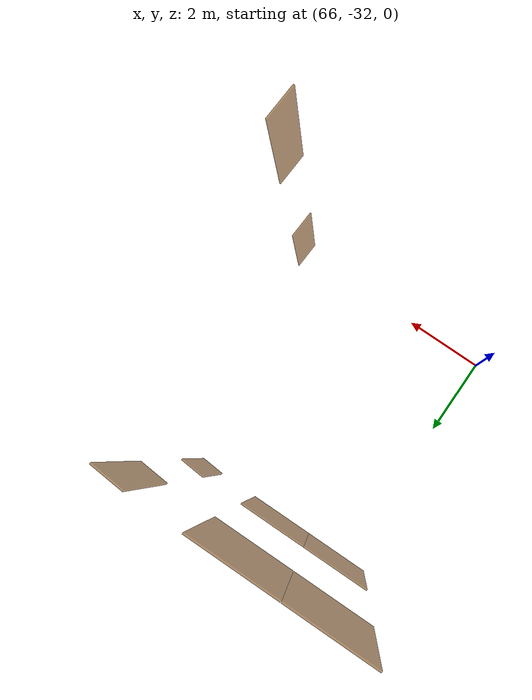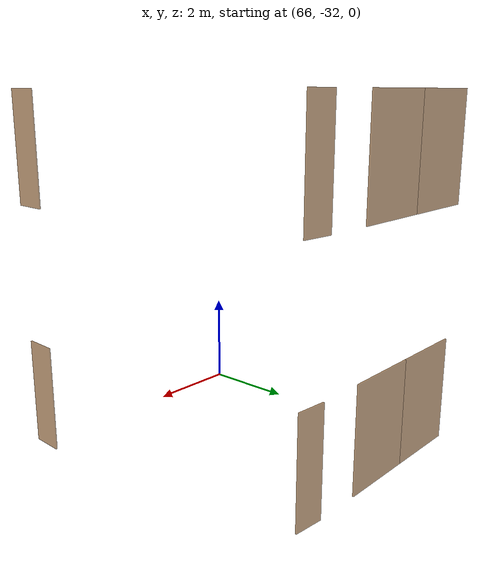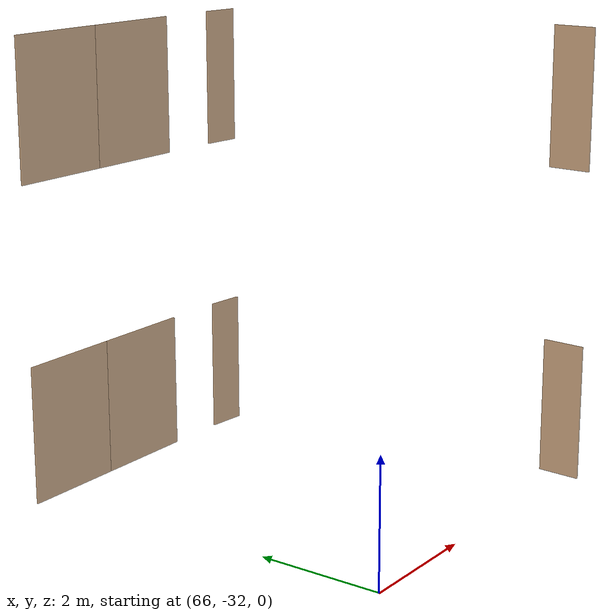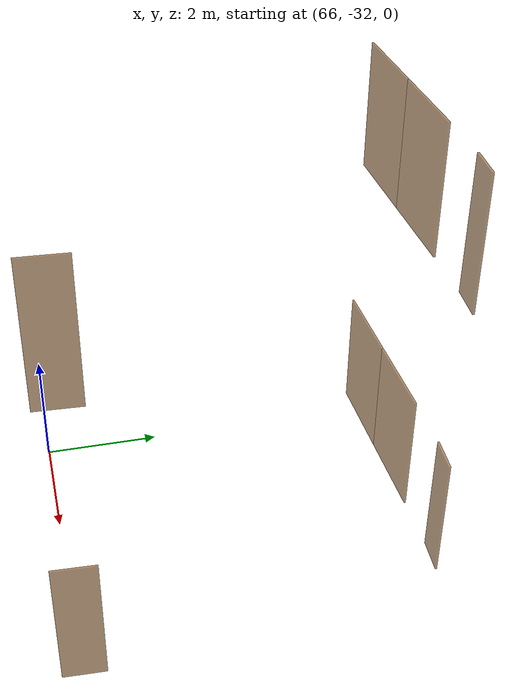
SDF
<sdf version="1.7">
 <world name="sim_world">
  <model name="null45">
   <pose>70.14021239644865 -26.01915840112933 0.0 0 0 -0.07860103913493263</pose>
   <link name="right">
    <pose>0 0 1.11 0 0 0</pose>
    <visual name="right_visual">
     <geometry><box><size>0.6215231595112535 0.03 2.2</size></box></geometry>
     <material>
      <ambient>0.5 0.25 0 0.6</ambient>
      <diffuse>0.5 0.25 0 0.6</diffuse>
      <pbr><metal><metalness>0.0</metalness></metal></pbr>
     </material>
    </visual>
    <collision name="right_collision">
     <geometry><box><size>0.6215231595112535 0.03 2.2</size></box></geometry>
     <surface><contact><collide_bitmask>0x02</collide_bitmask></contact></surface>
    </collision>
    <inertial>
     <mass>50.0</mass>
     <inertia><ixx>20.17041666666667</ixx><iyy>21.776212657536885</iyy><izz>1.613295990870213</izz></inertia>
    </inertial>
   </link>
   <joint name="right_joint" type="revolute">
    <parent>world</parent>
    <child>right</child>
    <axis><xyz>0 0 -1</xyz><limit><lower>0</lower><upper>1.57</upper></limit></axis>
    <pose>0.31576157975562674 0 0 0 0 0</pose>
   </joint>
   <plugin name="register_component" filename="libregister_component.so">
    <component name="Door">
     <v_max_door>0.5</v_max_door>
     <a_max_door>0.3</a_max_door>
     <a_nom_door>0.15</a_nom_door>
     <dx_min_door>0.01</dx_min_door>
     <f_max_door>500.0</f_max_door>
     <ros_interface>true</ros_interface>
     <door name="null45" type="SwingDoor" left_joint_name="empty_joint" right_joint_name="right_joint"/>
    </component>
   </plugin>
  </model>
  <model name="null46">
   <pose>71.31384347486909 -31.952761711059125 0.0 0 0 -1.6184101010375966</pose>
   <link name="right">
    <pose>0 0 1.11 0 0 0</pose>
    <visual name="right_visual">
     <geometry><box><size>0.6859361990120816 0.03 2.2</size></box></geometry>
     <material>
      <ambient>0.5 0.25 0 0.6</ambient>
      <diffuse>0.5 0.25 0 0.6</diffuse>
      <pbr><metal><metalness>0.0</metalness></metal></pbr>
     </material>
    </visual>
    <collision name="right_collision">
     <geometry><box><size>0.6859361990120816 0.03 2.2</size></box></geometry>
     <surface><contact><collide_bitmask>0x02</collide_bitmask></contact></surface>
    </collision>
    <inertial>
     <mass>50.0</mass>
     <inertia><ixx>20.17041666666667</ixx><iyy>22.127118621313095</iyy><izz>1.964201954646425</izz></inertia>
    </inertial>
   </link>
   <joint name="right_joint" type="revolute">
    <parent>world</parent>
    <child>right</child>
    <axis><xyz>0 0 -1</xyz><limit><lower>0</lower><upper>1.57</upper></limit></axis>
    <pose>0.3479680995060408 0 0 0 0 0</pose>
   </joint>
   <plugin name="register_component" filename="libregister_component.so">
    <component name="Door">
     <v_max_door>0.5</v_max_door>
     <a_max_door>0.3</a_max_door>
     <a_nom_door>0.15</a_nom_door>
     <dx_min_door>0.01</dx_min_door>
     <f_max_door>500.0</f_max_door>
     <ros_interface>true</ros_interface>
     <door name="null46" type="SwingDoor" left_joint_name="empty_joint" right_joint_name="right_joint"/>
    </component>
   </plugin>
  </model>
  <model name="null48">
   <pose>67.14968990304251 -26.0061585682975 0.0 0 0 0.007086104124595502</pose>
   <link name="right">
    <pose>0.8321854887629178 0 1.11 0 0 0</pose>
    <visual name="right_visual">
     <geometry><box><size>1.6543709775258355 0.03 2.2</size></box></geometry>
     <material>
      <ambient>0.5 0.25 0 0.6</ambient>
      <diffuse>0.5 0.25 0 0.6</diffuse>
      <pbr><metal><metalness>0.0</metalness></metal></pbr>
     </material>
    </visual>
    <collision name="right_collision">
     <geometry><box><size>1.6543709775258355 0.03 2.2</size></box></geometry>
     <surface><contact><collide_bitmask>0x02</collide_bitmask></contact></surface>
    </collision>
    <inertial>
     <mass>50.0</mass>
     <inertia><ixx>20.17041666666667</ixx><iyy>31.570597213665792</iyy><izz>11.40768054699912</izz></inertia>
    </inertial>
   </link>
   <joint name="right_joint" type="revolute">
    <parent>world</parent>
    <child>right</child>
    <axis><xyz>0 0 -1</xyz><limit><lower>0</lower><upper>1.57</upper></limit></axis>
    <pose>0.8321854887629178 0 0 0 0 0</pose>
   </joint>
   <link name="left">
    <pose>-0.8321854887629178 0 1.11 0 0 0</pose>
    <visual name="left_visual">
     <geometry><box><size>1.6543709775258355 0.03 2.2</size></box></geometry>
     <material>
      <ambient>0.5 0.25 0 0.6</ambient>
      <diffuse>0.5 0.25 0 0.6</diffuse>
      <pbr><metal><metalness>0.0</metalness></metal></pbr>
     </material>
    </visual>
    <collision name="left_collision">
     <geometry><box><size>1.6543709775258355 0.03 2.2</size></box></geometry>
     <surface><contact><collide_bitmask>0x02</collide_bitmask></contact></surface>
    </collision>
    <inertial>
     <mass>50.0</mass>
     <inertia><ixx>20.17041666666667</ixx><iyy>31.570597213665792</iyy><izz>11.40768054699912</izz></inertia>
    </inertial>
   </link>
   <joint name="left_joint" type="revolute">
    <parent>world</parent>
    <child>left</child>
    <axis><xyz>0 0 -1</xyz><limit><lower>-1.57</lower><upper>0</upper></limit></axis>
    <pose>-0.8321854887629178 0 0 0 0 0</pose>
   </joint>
   <plugin name="register_component" filename="libregister_component.so">
    <component name="Door">
     <v_max_door>0.5</v_max_door>
     <a_max_door>0.3</a_max_door>
     <a_nom_door>0.15</a_nom_door>
     <dx_min_door>0.01</dx_min_door>
     <f_max_door>500.0</f_max_door>
     <ros_interface>true</ros_interface>
     <door name="null48" type="DoubleSwingDoor" left_joint_name="left_joint" right_joint_name="right_joint"/>
    </component>
   </plugin>
  </model>
  <model name="anull45">
   <pose>70.14241029858573 -25.99201988006352 5.0 0 0 -0.0786001773160843</pose>
   <link name="right">
    <pose>0 0 1.11 0 0 0</pose>
    <visual name="right_visual">
     <geometry><box><size>0.6215258808078695 0.03 2.2</size></box></geometry>
     <material>
      <ambient>0.5 0.25 0 0.6</ambient>
      <diffuse>0.5 0.25 0 0.6</diffuse>
      <pbr><metal><metalness>0.0</metalness></metal></pbr>
     </material>
    </visual>
    <collision name="right_collision">
     <geometry><box><size>0.6215258808078695 0.03 2.2</size></box></geometry>
     <surface><contact><collide_bitmask>0x02</collide_bitmask></contact></surface>
    </collision>
    <inertial>
     <mass>50.0</mass>
     <inertia><ixx>20.17041666666667</ixx><iyy>21.776226752141664</iyy><izz>1.613310085474992</izz></inertia>
    </inertial>
   </link>
   <joint name="right_joint" type="revolute">
    <parent>world</parent>
    <child>right</child>
    <axis><xyz>0 0 -1</xyz><limit><lower>0</lower><upper>1.57</upper></limit></axis>
    <pose>0.31576294040393477 0 0 0 0 0</pose>
   </joint>
   <plugin name="register_component" filename="libregister_component.so">
    <component name="Door">
     <v_max_door>0.5</v_max_door>
     <a_max_door>0.3</a_max_door>
     <a_nom_door>0.15</a_nom_door>
     <dx_min_door>0.01</dx_min_door>
     <f_max_door>500.0</f_max_door>
     <ros_interface>true</ros_interface>
     <door name="anull45" type="SwingDoor" left_joint_name="empty_joint" right_joint_name="right_joint"/>
    </component>
   </plugin>
  </model>
  <model name="anull46">
   <pose>71.31605154801288 -31.92564774702097 5.0 0 0 -1.6184092392187461</pose>
   <link name="right">
    <pose>0 0 1.11 0 0 0</pose>
    <visual name="right_visual">
     <geometry><box><size>0.6859391978709468 0.03 2.2</size></box></geometry>
     <material>
      <ambient>0.5 0.25 0 0.6</ambient>
      <diffuse>0.5 0.25 0 0.6</diffuse>
      <pbr><metal><metalness>0.0</metalness></metal></pbr>
     </material>
    </visual>
    <collision name="right_collision">
     <geometry><box><size>0.6859391978709468 0.03 2.2</size></box></geometry>
     <surface><contact><collide_bitmask>0x02</collide_bitmask></contact></surface>
    </collision>
    <inertial>
     <mass>50.0</mass>
     <inertia><ixx>20.17041666666667</ixx><iyy>22.127135763232662</iyy><izz>1.9642190965659916</izz></inertia>
    </inertial>
   </link>
   <joint name="right_joint" type="revolute">
    <parent>world</parent>
    <child>right</child>
    <axis><xyz>0 0 -1</xyz><limit><lower>0</lower><upper>1.57</upper></limit></axis>
    <pose>0.3479695989354734 0 0 0 0 0</pose>
   </joint>
   <plugin name="register_component" filename="libregister_component.so">
    <component name="Door">
     <v_max_door>0.5</v_max_door>
     <a_max_door>0.3</a_max_door>
     <a_nom_door>0.15</a_nom_door>
     <dx_min_door>0.01</dx_min_door>
     <f_max_door>500.0</f_max_door>
     <ros_interface>true</ros_interface>
     <door name="anull46" type="SwingDoor" left_joint_name="empty_joint" right_joint_name="right_joint"/>
    </component>
   </plugin>
  </model>
  <model name="anull48">
   <pose>67.15187490751589 -25.97902256851384 5.0 0 0 0.007086965943435623</pose>
   <link name="right">
    <pose>0.8321890747336274 0 1.11 0 0 0</pose>
    <visual name="right_visual">
     <geometry><box><size>1.6543781494672547 0.03 2.2</size></box></geometry>
     <material>
      <ambient>0.5 0.25 0 0.6</ambient>
      <diffuse>0.5 0.25 0 0.6</diffuse>
      <pbr><metal><metalness>0.0</metalness></metal></pbr>
     </material>
    </visual>
    <collision name="right_collision">
     <geometry><box><size>1.6543781494672547 0.03 2.2</size></box></geometry>
     <surface><contact><collide_bitmask>0x02</collide_bitmask></contact></surface>
    </collision>
    <inertial>
     <mass>50.0</mass>
     <inertia><ixx>20.17041666666667</ixx><iyy>31.570696089311248</iyy><izz>11.407779422644577</izz></inertia>
    </inertial>
   </link>
   <joint name="right_joint" type="revolute">
    <parent>world</parent>
    <child>right</child>
    <axis><xyz>0 0 -1</xyz><limit><lower>0</lower><upper>1.57</upper></limit></axis>
    <pose>0.8321890747336274 0 0 0 0 0</pose>
   </joint>
   <link name="left">
    <pose>-0.8321890747336274 0 1.11 0 0 0</pose>
    <visual name="left_visual">
     <geometry><box><size>1.6543781494672547 0.03 2.2</size></box></geometry>
     <material>
      <ambient>0.5 0.25 0 0.6</ambient>
      <diffuse>0.5 0.25 0 0.6</diffuse>
      <pbr><metal><metalness>0.0</metalness></metal></pbr>
     </material>
    </visual>
    <collision name="left_collision">
     <geometry><box><size>1.6543781494672547 0.03 2.2</size></box></geometry>
     <surface><contact><collide_bitmask>0x02</collide_bitmask></contact></surface>
    </collision>
    <inertial>
     <mass>50.0</mass>
     <inertia><ixx>20.17041666666667</ixx><iyy>31.570696089311248</iyy><izz>11.407779422644577</izz></inertia>
    </inertial>
   </link>
   <joint name="left_joint" type="revolute">
    <parent>world</parent>
    <child>left</child>
    <axis><xyz>0 0 -1</xyz><limit><lower>-1.57</lower><upper>0</upper></limit></axis>
    <pose>-0.8321890747336274 0 0 0 0 0</pose>
   </joint>
   <plugin name="register_component" filename="libregister_component.so">
    <component name="Door">
     <v_max_door>0.5</v_max_door>
     <a_max_door>0.3</a_max_door>
     <a_nom_door>0.15</a_nom_door>
     <dx_min_door>0.01</dx_min_door>
     <f_max_door>500.0</f_max_door>
     <ros_interface>true</ros_interface>
     <door name="anull48" type="DoubleSwingDoor" left_joint_name="left_joint" right_joint_name="right_joint"/>
    </component>
   </plugin>
  </model>
 </world>
</sdf>
